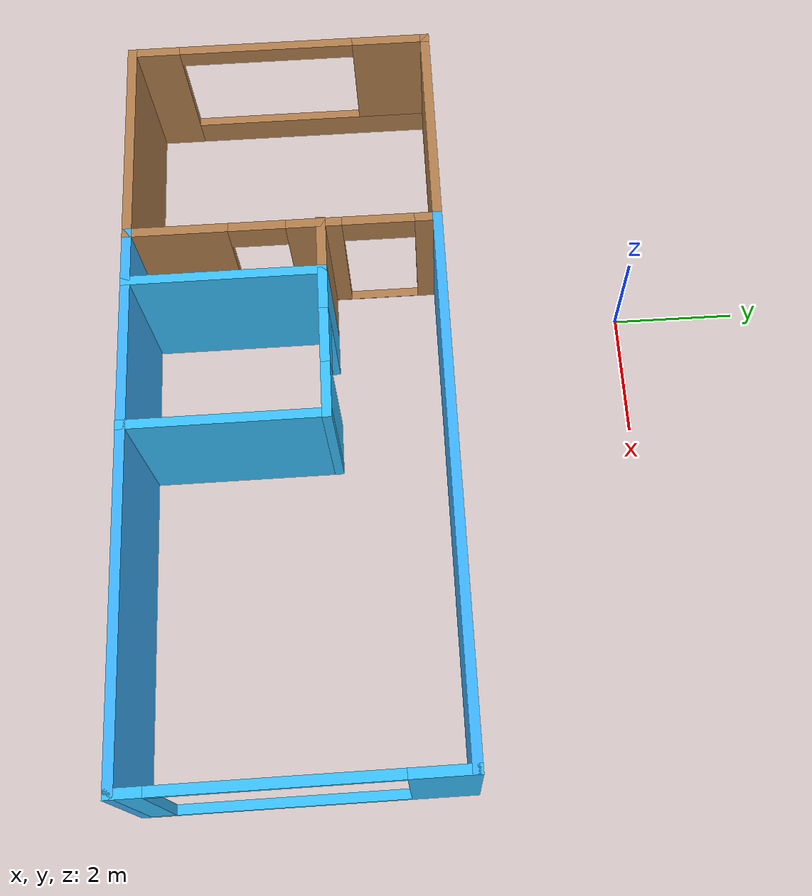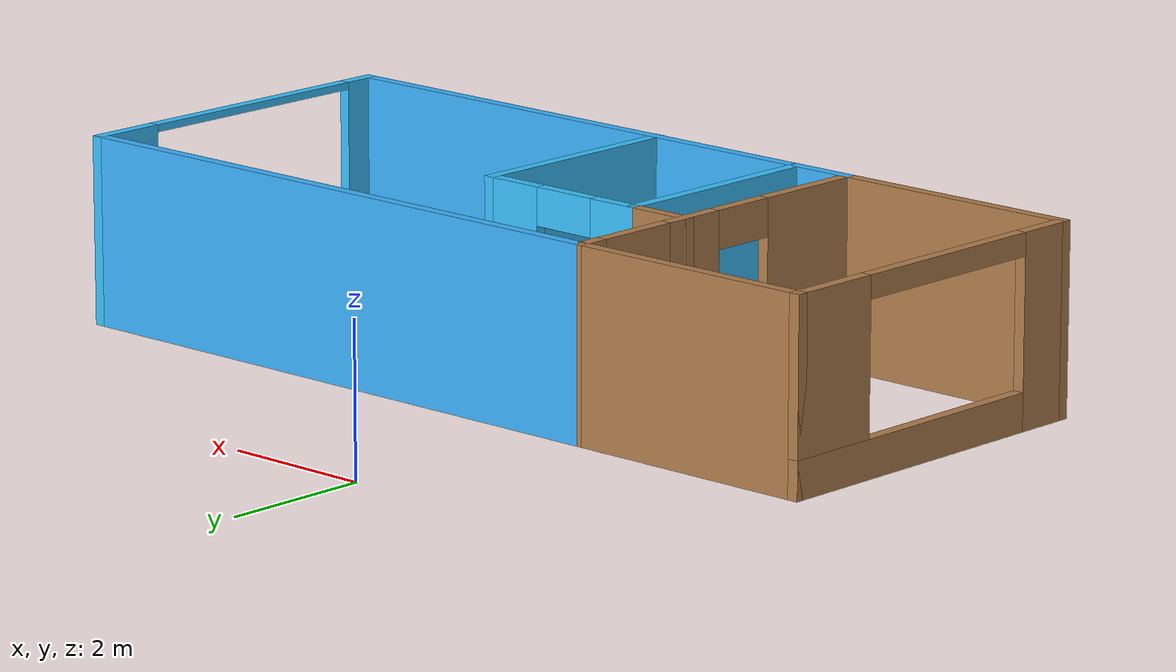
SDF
<?xml version='1.0'?>
<sdf version='1.6'>
  <model name='Building'>
    <pose frame=''>1.665 -5.42992 0 0 -0 0</pose>
    <link name='Wall_1'>
      <pose frame=''>5.925 0.004925 0 0 0 -1.5708</pose>
      <visual name='Wall_1_Visual_0'>
        <pose frame=''>-1.9975 0 1.25 0 -0 0</pose>
        <geometry>
          <box>
            <size>1.005 0.15 2.5</size>
          </box>
        </geometry>
        <material>
          <script>
            <uri>file://media/materials/scripts/gazebo.material</uri>
            <name>Gazebo/Grey</name>
          </script>
          <ambient>0.223529 0.756863 1 1</ambient>
        </material>
        <meta>
          <layer>0</layer>
        </meta>
      </visual>
      <collision name='Wall_1_Collision_0'>
        <geometry>
          <box>
            <size>1.005 0.15 2.5</size>
          </box>
        </geometry>
        <pose frame=''>-1.9975 0 1.25 0 -0 0</pose>
      </collision>
      <visual name='Wall_1_Visual_1'>
        <pose frame=''>0.5025 0 0.05 0 -0 0</pose>
        <geometry>
          <box>
            <size>3.995 0.15 0.1</size>
          </box>
        </geometry>
        <material>
          <script>
            <uri>file://media/materials/scripts/gazebo.material</uri>
            <name>Gazebo/Grey</name>
          </script>
          <ambient>0.223529 0.756863 1 1</ambient>
        </material>
        <meta>
          <layer>0</layer>
        </meta>
      </visual>
      <collision name='Wall_1_Collision_1'>
        <geometry>
          <box>
            <size>3.995 0.15 0.1</size>
          </box>
        </geometry>
        <pose frame=''>0.5025 0 0.05 0 -0 0</pose>
      </collision>
      <visual name='Wall_1_Visual_2'>
        <pose frame=''>2.2375 0 1.3 0 -0 0</pose>
        <geometry>
          <box>
            <size>0.525 0.15 2.4</size>
          </box>
        </geometry>
        <material>
          <script>
            <uri>file://media/materials/scripts/gazebo.material</uri>
            <name>Gazebo/Grey</name>
          </script>
          <ambient>0.223529 0.756863 1 1</ambient>
        </material>
        <meta>
          <layer>0</layer>
        </meta>
      </visual>
      <collision name='Wall_1_Collision_2'>
        <geometry>
          <box>
            <size>0.525 0.15 2.4</size>
          </box>
        </geometry>
        <pose frame=''>2.2375 0 1.3 0 -0 0</pose>
      </collision>
      <visual name='Wall_1_Visual_3'>
        <pose frame=''>0.24 0 2.45 0 -0 0</pose>
        <geometry>
          <box>
            <size>3.47 0.15 0.1</size>
          </box>
        </geometry>
        <material>
          <script>
            <uri>file://media/materials/scripts/gazebo.material</uri>
            <name>Gazebo/Grey</name>
          </script>
          <ambient>0.223529 0.756863 1 1</ambient>
        </material>
        <meta>
          <layer>0</layer>
        </meta>
      </visual>
      <collision name='Wall_1_Collision_3'>
        <geometry>
          <box>
            <size>3.47 0.15 0.1</size>
          </box>
        </geometry>
        <pose frame=''>0.24 0 2.45 0 -0 0</pose>
      </collision>
    </link>
    <link name='Wall_12'>
      <collision name='Wall_12_Collision'>
        <geometry>
          <box>
            <size>3.18 0.15 2.5</size>
          </box>
        </geometry>
        <pose frame=''>0 0 1.25 0 -0 0</pose>
      </collision>
      <visual name='Wall_12_Visual'>
        <pose frame=''>0 0 1.25 0 -0 0</pose>
        <geometry>
          <box>
            <size>3.18 0.15 2.5</size>
          </box>
        </geometry>
        <material>
          <script>
            <uri>file://media/materials/scripts/gazebo.material</uri>
            <name>Gazebo/Grey</name>
          </script>
          <ambient>0.223529 0.756863 1 1</ambient>
        </material>
        <meta>
          <layer>0</layer>
        </meta>
      </visual>
      <pose frame=''>0.725002 -0.915074 0 0 -0 1.5708</pose>
    </link>
    <link name='Wall_13'>
      <pose frame=''>-0.449998 0.599925 0 0 -0 3.14159</pose>
      <visual name='Wall_13_Visual_0'>
        <pose frame=''>-0.8025 0 1.25 0 -0 0</pose>
        <geometry>
          <box>
            <size>0.895 0.15 2.5</size>
          </box>
        </geometry>
        <material>
          <script>
            <uri>file://media/materials/scripts/gazebo.material</uri>
            <name>Gazebo/Grey</name>
          </script>
          <ambient>0.223529 0.756863 1 1</ambient>
        </material>
        <meta>
          <layer>0</layer>
        </meta>
      </visual>
      <collision name='Wall_13_Collision_0'>
        <geometry>
          <box>
            <size>0.895 0.15 2.5</size>
          </box>
        </geometry>
        <pose frame=''>-0.8025 0 1.25 0 -0 0</pose>
      </collision>
      <visual name='Wall_13_Visual_1'>
        <pose frame=''>0.8975 0 1.25 0 -0 0</pose>
        <geometry>
          <box>
            <size>0.705 0.15 2.5</size>
          </box>
        </geometry>
        <material>
          <script>
            <uri>file://media/materials/scripts/gazebo.material</uri>
            <name>Gazebo/Grey</name>
          </script>
          <ambient>0.223529 0.756863 1 1</ambient>
        </material>
        <meta>
          <layer>0</layer>
        </meta>
      </visual>
      <collision name='Wall_13_Collision_1'>
        <geometry>
          <box>
            <size>0.705 0.15 2.5</size>
          </box>
        </geometry>
        <pose frame=''>0.8975 0 1.25 0 -0 0</pose>
      </collision>
      <visual name='Wall_13_Visual_2'>
        <pose frame=''>0.095 0 2.25 0 -0 0</pose>
        <geometry>
          <box>
            <size>0.9 0.15 0.5</size>
          </box>
        </geometry>
        <material>
          <script>
            <uri>file://media/materials/scripts/gazebo.material</uri>
            <name>Gazebo/Grey</name>
          </script>
          <ambient>0.223529 0.756863 1 1</ambient>
        </material>
        <meta>
          <layer>0</layer>
        </meta>
      </visual>
      <collision name='Wall_13_Collision_2'>
        <geometry>
          <box>
            <size>0.9 0.15 0.5</size>
          </box>
        </geometry>
        <pose frame=''>0.095 0 2.25 0 -0 0</pose>
      </collision>
    </link>
    <link name='Wall_15'>
      <collision name='Wall_15_Collision'>
        <geometry>
          <box>
            <size>3.59002 0.15 2.5</size>
          </box>
        </geometry>
        <pose frame=''>0 0 1.25 0 -0 0</pose>
      </collision>
      <visual name='Wall_15_Visual'>
        <pose frame=''>0 0 1.25 0 -0 0</pose>
        <geometry>
          <box>
            <size>3.59002 0.15 2.5</size>
          </box>
        </geometry>
        <material>
          <script>
            <uri>file://media/materials/scripts/gazebo.material</uri>
            <name>Gazebo/Wood</name>
          </script>
          <ambient>1 1 1 1</ambient>
        </material>
        <meta>
          <layer>0</layer>
        </meta>
      </visual>
      <pose frame=''>-4.205 2.42992 0 0 -0 0</pose>
    </link>
    <link name='Wall_17'>
      <collision name='Wall_17_Collision'>
        <geometry>
          <box>
            <size>8.56001 0.15 2.5</size>
          </box>
        </geometry>
        <pose frame=''>0 0 1.25 0 -0 0</pose>
      </collision>
      <visual name='Wall_17_Visual'>
        <pose frame=''>0 0 1.25 0 -0 0</pose>
        <geometry>
          <box>
            <size>8.56001 0.15 2.5</size>
          </box>
        </geometry>
        <material>
          <script>
            <uri>file://media/materials/scripts/gazebo.material</uri>
            <name>Gazebo/Grey</name>
          </script>
          <ambient>0.235294 0.705882 1 1</ambient>
        </material>
        <meta>
          <layer>0</layer>
        </meta>
      </visual>
      <pose frame=''>1.72 2.42992 0 0 -0 0</pose>
    </link>
    <link name='Wall_19'>
      <collision name='Wall_19_Collision'>
        <geometry>
          <box>
            <size>3.58001 0.15 2.5</size>
          </box>
        </geometry>
        <pose frame=''>0 0 1.25 0 -0 0</pose>
      </collision>
      <visual name='Wall_19_Visual'>
        <pose frame=''>0 0 1.25 0 -0 0</pose>
        <geometry>
          <box>
            <size>3.58001 0.15 2.5</size>
          </box>
        </geometry>
        <material>
          <script>
            <uri>file://media/materials/scripts/gazebo.material</uri>
            <name>Gazebo/Wood</name>
          </script>
          <ambient>1 1 1 1</ambient>
        </material>
        <meta>
          <layer>0</layer>
        </meta>
      </visual>
      <pose frame=''>-4.21 -2.42008 0 0 -0 0</pose>
    </link>
    <link name='Wall_21'>
      <collision name='Wall_21_Collision'>
        <geometry>
          <box>
            <size>8.57001 0.15 2.5</size>
          </box>
        </geometry>
        <pose frame=''>0 0 1.25 0 -0 0</pose>
      </collision>
      <visual name='Wall_21_Visual'>
        <pose frame=''>0 0 1.25 0 -0 0</pose>
        <geometry>
          <box>
            <size>8.57001 0.15 2.5</size>
          </box>
        </geometry>
        <material>
          <script>
            <uri>file://media/materials/scripts/gazebo.material</uri>
            <name>Gazebo/Grey</name>
          </script>
          <ambient>0.235294 0.705882 1 1</ambient>
        </material>
        <meta>
          <layer>0</layer>
        </meta>
      </visual>
      <pose frame=''>1.715 -2.42008 0 0 -0 0</pose>
    </link>
    <link name='Wall_3'>
      <pose frame=''>-5.925 0.004925 0 0 -0 1.5708</pose>
      <visual name='Wall_3_Visual_0'>
        <pose frame=''>-2.0725 0 1.25 0 -0 0</pose>
        <geometry>
          <box>
            <size>0.855 0.15 2.5</size>
          </box>
        </geometry>
        <material>
          <script>
            <uri>file://media/materials/scripts/gazebo.material</uri>
            <name>Gazebo/Wood</name>
          </script>
          <ambient>1 1 1 1</ambient>
        </material>
        <meta>
          <layer>0</layer>
        </meta>
      </visual>
      <collision name='Wall_3_Collision_0'>
        <geometry>
          <box>
            <size>0.855 0.15 2.5</size>
          </box>
        </geometry>
        <pose frame=''>-2.0725 0 1.25 0 -0 0</pose>
      </collision>
      <visual name='Wall_3_Visual_1'>
        <pose frame=''>0.4275 0 0.25 0 -0 0</pose>
        <geometry>
          <box>
            <size>4.145 0.15 0.5</size>
          </box>
        </geometry>
        <material>
          <script>
            <uri>file://media/materials/scripts/gazebo.material</uri>
            <name>Gazebo/Wood</name>
          </script>
          <ambient>1 1 1 1</ambient>
        </material>
        <meta>
          <layer>0</layer>
        </meta>
      </visual>
      <collision name='Wall_3_Collision_1'>
        <geometry>
          <box>
            <size>4.145 0.15 0.5</size>
          </box>
        </geometry>
        <pose frame=''>0.4275 0 0.25 0 -0 0</pose>
      </collision>
      <visual name='Wall_3_Visual_2'>
        <pose frame=''>1.8575 0 1.5 0 -0 0</pose>
        <geometry>
          <box>
            <size>1.285 0.15 2</size>
          </box>
        </geometry>
        <material>
          <script>
            <uri>file://media/materials/scripts/gazebo.material</uri>
            <name>Gazebo/Wood</name>
          </script>
          <ambient>1 1 1 1</ambient>
        </material>
        <meta>
          <layer>0</layer>
        </meta>
      </visual>
      <collision name='Wall_3_Collision_2'>
        <geometry>
          <box>
            <size>1.285 0.15 2</size>
          </box>
        </geometry>
        <pose frame=''>1.8575 0 1.5 0 -0 0</pose>
      </collision>
      <visual name='Wall_3_Visual_3'>
        <pose frame=''>-0.215 0 2.35 0 -0 0</pose>
        <geometry>
          <box>
            <size>2.86 0.15 0.3</size>
          </box>
        </geometry>
        <material>
          <script>
            <uri>file://media/materials/scripts/gazebo.material</uri>
            <name>Gazebo/Wood</name>
          </script>
          <ambient>1 1 1 1</ambient>
        </material>
        <meta>
          <layer>0</layer>
        </meta>
      </visual>
      <collision name='Wall_3_Collision_3'>
        <geometry>
          <box>
            <size>2.86 0.15 0.3</size>
          </box>
        </geometry>
        <pose frame=''>-0.215 0 2.35 0 -0 0</pose>
      </collision>
    </link>
    <link name='Wall_5'>
      <pose frame=''>-2.49 0.004925 0 0 0 -1.57286</pose>
      <visual name='Wall_5_Visual_0'>
        <pose frame=''>-2.2825 0 1.25 0 -0 0</pose>
        <geometry>
          <box>
            <size>0.434997 0.15 2.5</size>
          </box>
        </geometry>
        <material>
          <script>
            <uri>file://media/materials/scripts/gazebo.material</uri>
            <name>Gazebo/Wood</name>
          </script>
          <ambient>1 1 1 1</ambient>
        </material>
        <meta>
          <layer>0</layer>
        </meta>
      </visual>
      <collision name='Wall_5_Collision_0'>
        <geometry>
          <box>
            <size>0.434997 0.15 2.5</size>
          </box>
        </geometry>
        <pose frame=''>-2.2825 0 1.25 0 -0 0</pose>
      </collision>
      <visual name='Wall_5_Visual_1'>
        <pose frame=''>1.6775 0 1.25 0 -0 0</pose>
        <geometry>
          <box>
            <size>1.645 0.15 2.5</size>
          </box>
        </geometry>
        <material>
          <script>
            <uri>file://media/materials/scripts/gazebo.material</uri>
            <name>Gazebo/Wood</name>
          </script>
          <ambient>1 1 1 1</ambient>
        </material>
        <meta>
          <layer>0</layer>
        </meta>
      </visual>
      <collision name='Wall_5_Collision_1'>
        <geometry>
          <box>
            <size>1.645 0.15 2.5</size>
          </box>
        </geometry>
        <pose frame=''>1.6775 0 1.25 0 -0 0</pose>
      </collision>
      <visual name='Wall_5_Visual_2'>
        <pose frame=''>-1.055 0 0.005 0 -0 0</pose>
        <geometry>
          <box>
            <size>2.02 0.15 0.01</size>
          </box>
        </geometry>
        <material>
          <script>
            <uri>file://media/materials/scripts/gazebo.material</uri>
            <name>Gazebo/Wood</name>
          </script>
          <ambient>1 1 1 1</ambient>
        </material>
        <meta>
          <layer>0</layer>
        </meta>
      </visual>
      <collision name='Wall_5_Collision_2'>
        <geometry>
          <box>
            <size>2.02 0.15 0.01</size>
          </box>
        </geometry>
        <pose frame=''>-1.055 0 0.005 0 -0 0</pose>
      </collision>
      <visual name='Wall_5_Visual_3'>
        <pose frame=''>-0.485001 0 1.255 0 -0 0</pose>
        <geometry>
          <box>
            <size>0.880004 0.15 2.49</size>
          </box>
        </geometry>
        <material>
          <script>
            <uri>file://media/materials/scripts/gazebo.material</uri>
            <name>Gazebo/Wood</name>
          </script>
          <ambient>1 1 1 1</ambient>
        </material>
        <meta>
          <layer>0</layer>
        </meta>
      </visual>
      <collision name='Wall_5_Collision_3'>
        <geometry>
          <box>
            <size>0.880004 0.15 2.49</size>
          </box>
        </geometry>
        <pose frame=''>-0.485001 0 1.255 0 -0 0</pose>
      </collision>
      <visual name='Wall_5_Visual_4'>
        <pose frame=''>0.405001 0 2.25 0 -0 0</pose>
        <geometry>
          <box>
            <size>0.9 0.15 0.5</size>
          </box>
        </geometry>
        <material>
          <script>
            <uri>file://media/materials/scripts/gazebo.material</uri>
            <name>Gazebo/Wood</name>
          </script>
          <ambient>1 1 1 1</ambient>
        </material>
        <meta>
          <layer>0</layer>
        </meta>
      </visual>
      <collision name='Wall_5_Collision_4'>
        <geometry>
          <box>
            <size>0.9 0.15 0.5</size>
          </box>
        </geometry>
        <pose frame=''>0.405001 0 2.25 0 -0 0</pose>
      </collision>
      <visual name='Wall_5_Visual_5'>
        <pose frame=''>-1.495 0 2.255 0 -0 0</pose>
        <geometry>
          <box>
            <size>1.14 0.15 0.49</size>
          </box>
        </geometry>
        <material>
          <script>
            <uri>file://media/materials/scripts/gazebo.material</uri>
            <name>Gazebo/Wood</name>
          </script>
          <ambient>1 1 1 1</ambient>
        </material>
        <meta>
          <layer>0</layer>
        </meta>
      </visual>
      <collision name='Wall_5_Collision_5'>
        <geometry>
          <box>
            <size>1.14 0.15 0.49</size>
          </box>
        </geometry>
        <pose frame=''>-1.495 0 2.255 0 -0 0</pose>
      </collision>
    </link>
    <link name='Wall_7'>
      <collision name='Wall_7_Collision'>
        <geometry>
          <box>
            <size>1 0.15 2.5</size>
          </box>
        </geometry>
        <pose frame=''>0 0 1.25 0 -0 0</pose>
      </collision>
      <visual name='Wall_7_Visual'>
        <pose frame=''>0 0 1.25 0 -0 0</pose>
        <geometry>
          <box>
            <size>1 0.15 2.5</size>
          </box>
        </geometry>
        <material>
          <script>
            <uri>file://media/materials/scripts/gazebo.material</uri>
            <name>Gazebo/Wood</name>
          </script>
          <ambient>1 1 1 1</ambient>
        </material>
        <meta>
          <layer>0</layer>
        </meta>
      </visual>
      <pose frame=''>-2.08 0.599925 0 0 -0 0</pose>
    </link>
    <link name='Wall_8'>
      <collision name='Wall_8_Collision'>
        <geometry>
          <box>
            <size>3.17 0.15 2.5</size>
          </box>
        </geometry>
        <pose frame=''>0 0 1.25 0 -0 0</pose>
      </collision>
      <visual name='Wall_8_Visual'>
        <pose frame=''>0 0 1.25 0 -0 0</pose>
        <geometry>
          <box>
            <size>3.17 0.15 2.5</size>
          </box>
        </geometry>
        <material>
          <script>
            <uri>file://media/materials/scripts/gazebo.material</uri>
            <name>Gazebo/Grey</name>
          </script>
          <ambient>0.223529 0.756863 1 1</ambient>
        </material>
        <meta>
          <layer>0</layer>
        </meta>
      </visual>
      <pose frame=''>-1.655 -0.910075 0 0 0 -1.5708</pose>
    </link>
    <static>1</static>
  </model>
</sdf>
